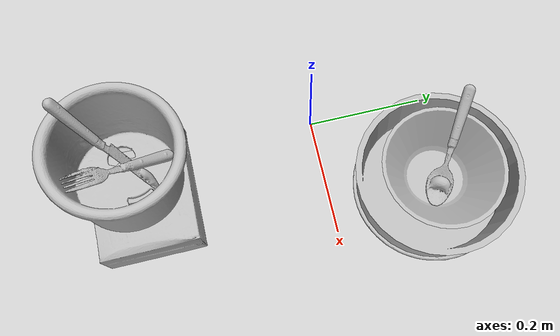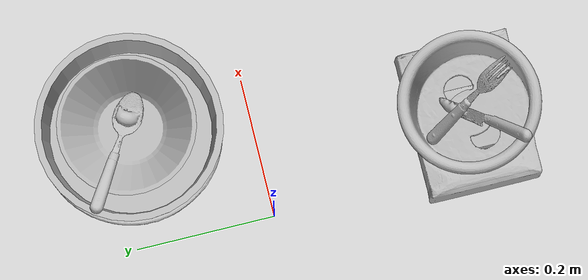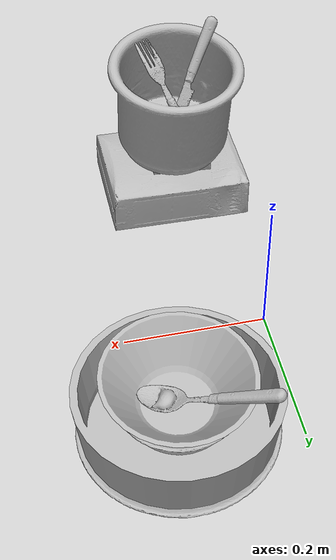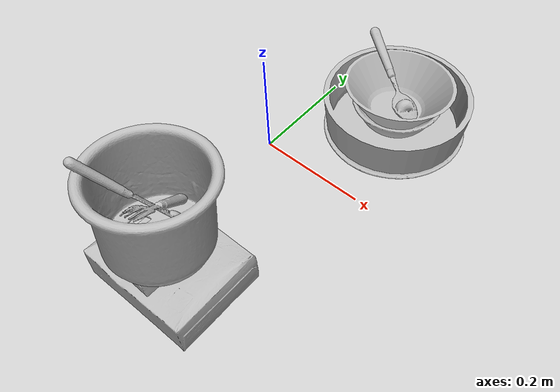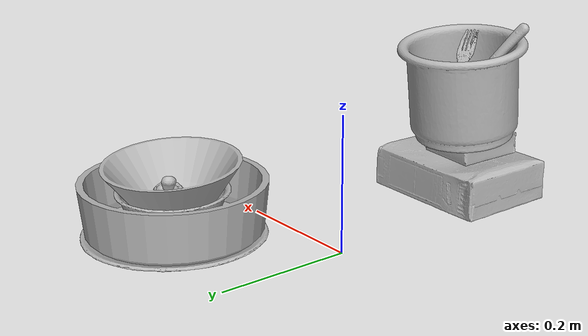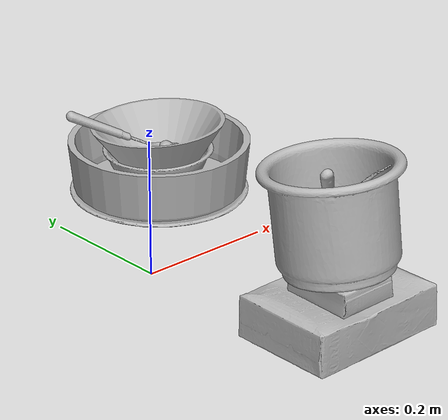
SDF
<?xml version="1.0" ?>
<sdf version="1.4">

  <world name="default">

    <light name="light1" type="point">

      <pose>0 0 1 0 0 0</pose>

      <diffuse>3 3 3 1</diffuse>

      <specular>3 3 3 1</specular>

    </light>

    <light name="light2" type="point">

      <pose>0 0.5 2 0 0 0</pose>

      <diffuse>1 1 1 1</diffuse>

      <specular>1 1 1 1</specular>

    </light>

    <light name="light3" type="point">

      <pose>0 0.5 2 0 0 0</pose>

      <diffuse>3 3 3 1</diffuse>

      <specular>3 3 3 1</specular>

    </light>

    <scene>

      <ambient>0.7 0.7 0.7</ambient>

    </scene>

    <model name="plate1">

      <link name="link_plate1">

        <collision name="default">

          <geometry>

            <mesh>

              <uri>model://plate/collision_meshes/collision.obj</uri>

              <scale>1.0 1.0 1.0</scale>

            </mesh>

          </geometry>

          <surface>

            <friction>

              <ode>

                <mu>0.5</mu>

                <mu2>0.5</mu2>

              </ode>

            </friction>

          </surface>

        </collision>

        <visual name="default">

          <geometry>

            <mesh>

              <uri>model://plate/visual_meshes/visual.dae</uri>

              <scale>1.0 1.0 1.0</scale>

            </mesh>

          </geometry>

        </visual>

        <inertial>

          <mass>0.2518167495727539</mass>

          <pose>-0.000604460306931287 0.0002782583760563284 -0.001056198962032795 0.0022187362427659595 -0.003225514577586686 0.4526257716004426</pose>

          <inertia>

            <ixx>0.0011780038</ixx>

            <iyy>0.001166737</iyy>

            <izz>0.0023039998</izz>

            <ixy>0</ixy>

            <ixz>0</ixz>

            <iyz>0</iyz>

          </inertia>

        </inertial>

      </link>

      <pose>0.15996208786964417 0.1699904501438141 0.013736936263740063 -1.6191033516227325e-05 -5.102615691908712e-05 -0.00024221712065380284</pose>

    </model>

    <model name="plate2">

      <link name="link_plate2">

        <collision name="default">

          <geometry>

            <mesh>

              <uri>model://pan_tefal/collision_meshes/collision.obj</uri>

              <scale>1.0 1.0 1.0</scale>

            </mesh>

          </geometry>

          <surface>

            <friction>

              <ode>

                <mu>0.5</mu>

                <mu2>0.5</mu2>

              </ode>

            </friction>

          </surface>

        </collision>

        <visual name="default">

          <geometry>

            <mesh>

              <uri>model://pan_tefal/visual_meshes/visual.dae</uri>

              <scale>1.0 1.0 1.0</scale>

            </mesh>

          </geometry>

        </visual>

        <inertial>

          <mass>1.062379002571106</mass>

          <pose>-0.00018001841090153903 3.2791107514640316e-05 -0.008514937944710255 0.0008190335190592257 -0.00033013878845789875 -0.3318630487039029</pose>

          <inertia>

            <ixx>0.0073335525</ixx>

            <iyy>0.007380832</iyy>

            <izz>0.013499655</izz>

            <ixy>0</ixy>

            <ixz>0</ixz>

            <iyz>0</iyz>

          </inertia>

        </inertial>

      </link>

      <pose>0.16016913950443268 0.16920727491378784 0.06393321603536606 -0.0004554828233171772 -0.0030048096549536744 0.005372120057954423</pose>

    </model>

    <model name="bowl1">

      <link name="link_bowl1">

        <collision name="default">

          <geometry>

            <mesh>

              <uri>model://bowl/collision_meshes/collision.obj</uri>

              <scale>1.0 1.0 1.0</scale>

            </mesh>

          </geometry>

          <surface>

            <friction>

              <ode>

                <mu>0.5</mu>

                <mu2>0.5</mu2>

              </ode>

            </friction>

          </surface>

        </collision>

        <visual name="default">

          <geometry>

            <mesh>

              <uri>model://bowl/visual_meshes/visual.dae</uri>

              <scale>1.0 1.0 1.0</scale>

            </mesh>

          </geometry>

        </visual>

        <inertial>

          <mass>0.06917417049407959</mass>

          <pose>0.00020445069822017103 -0.0010302119189873338 -0.0008042645640671253 -0.015764106225313407 0.014546789960746879 0.7140402093907182</pose>

          <inertia>

            <ixx>0.00015889853</ixx>

            <iyy>0.00015534814</iyy>

            <izz>0.000267322</izz>

            <ixy>0</ixy>

            <ixz>0</ixz>

            <iyz>0</iyz>

          </inertia>

        </inertial>

      </link>

      <pose>0.15957479178905487 0.1708521693944931 0.0613720528781414 -0.0020763747684631015 -0.0038815467257788706 -0.012710955016002234</pose>

    </model>

    <model name="bowl2">

      <link name="link_bowl2">

        <collision name="default">

          <geometry>

            <mesh>

              <uri>model://bowl_a/collision_meshes/collision.obj</uri>

              <scale>1.0 1.0 1.0</scale>

            </mesh>

          </geometry>

          <surface>

            <friction>

              <ode>

                <mu>0.5</mu>

                <mu2>0.5</mu2>

              </ode>

            </friction>

          </surface>

        </collision>

        <visual name="default">

          <geometry>

            <mesh>

              <uri>model://bowl_a/visual_meshes/visual.dae</uri>

              <scale>1.0 1.0 1.0</scale>

            </mesh>

          </geometry>

        </visual>

        <inertial>

          <mass>0.33581992983818054</mass>

          <pose>0.00027867587050423026 4.7312365495599806e-05 -0.0013765293406322598 -0.0009805275277335347 -0.0010938264345752996 -0.19124334191203107</pose>

          <inertia>

            <ixx>0.00095609494</ixx>

            <iyy>0.0009619646</iyy>

            <izz>0.0017004515</izz>

            <ixy>0</ixy>

            <ixz>0</ixz>

            <iyz>0</iyz>

          </inertia>

        </inertial>

      </link>

      <pose>0.16063310205936432 0.16960746049880981 0.09647785872220993 -0.0702966843495445 -0.019019882372401417 0.03807264308539788</pose>

    </model>

    <model name="silverware1">

      <link name="link_silverware1">

        <collision name="default">

          <geometry>

            <mesh>

              <uri>model://spoon/collision_meshes/collision.obj</uri>

              <scale>1.0 1.0 1.0</scale>

            </mesh>

          </geometry>

          <surface>

            <friction>

              <ode>

                <mu>0.5</mu>

                <mu2>0.5</mu2>

              </ode>

            </friction>

          </surface>

        </collision>

        <visual name="default">

          <geometry>

            <mesh>

              <uri>model://spoon/visual_meshes/visual.dae</uri>

              <scale>1.0 1.0 1.0</scale>

            </mesh>

          </geometry>

        </visual>

        <inertial>

          <mass>0.02635110728442669</mass>

          <pose>-0.005526317283511162 -0.0016034177970141172 -0.0007271651993505657 0.03521639754710896 -0.03906583271405073 0.0061506130160543454</pose>

          <inertia>

            <ixx>1.4656912e-06</ixx>

            <iyy>0.0001002651</iyy>

            <izz>0.00010098792</izz>

            <ixy>0</ixy>

            <ixz>0</ixz>

            <iyz>0</iyz>

          </inertia>

        </inertial>

      </link>

      <pose>0.1282419115304947 0.1983431875705719 0.10795997083187103 0.0071585660652956455 0.4377959914846275 -0.5285774435429693</pose>

    </model>

    <model name="box1">

      <link name="link_box1">

        <collision name="default">

          <geometry>

            <mesh>

              <uri>model://cracker_box/collision_meshes/collision.obj</uri>

              <scale>1.0 1.0 1.0</scale>

            </mesh>

          </geometry>

          <surface>

            <friction>

              <ode>

                <mu>0.5</mu>

                <mu2>0.5</mu2>

              </ode>

            </friction>

          </surface>

        </collision>

        <visual name="default">

          <geometry>

            <mesh>

              <uri>model://cracker_box/visual_meshes/visual.dae</uri>

              <scale>1.0 1.0 1.0</scale>

            </mesh>

          </geometry>

        </visual>

        <inertial>

          <mass>1.9942995309829712</mass>

          <pose>0.0009464178583584726 0.00025434247800149024 -0.0017029533628374338 -0.00031620747948387436 -0.011106490532043566 0.0025467943028284904</pose>

          <inertia>

            <ixx>0.005072607</ixx>

            <iyy>0.008375872</iyy>

            <izz>0.011953138</izz>

            <ixy>0</ixy>

            <ixz>0</ixz>

            <iyz>0</iyz>

          </inertia>

        </inertial>

      </link>

      <pose>0.06982684880495071 -0.29941344261169434 0.03648177906870842 -0.011788317905128293 -0.007363751157350543 0.0010266343977122327</pose>

    </model>

    <model name="box2">

      <link name="link_box2">

        <collision name="default">

          <geometry>

            <mesh>

              <uri>model://pudding_box/collision_meshes/collision.obj</uri>

              <scale>1.0 1.0 1.0</scale>

            </mesh>

          </geometry>

          <surface>

            <friction>

              <ode>

                <mu>0.5</mu>

                <mu2>0.5</mu2>

              </ode>

            </friction>

          </surface>

        </collision>

        <visual name="default">

          <geometry>

            <mesh>

              <uri>model://pudding_box/visual_meshes/visual.dae</uri>

              <scale>1.0 1.0 1.0</scale>

            </mesh>

          </geometry>

        </visual>

        <inertial>

          <mass>0.5201411247253418</mass>

          <pose>0.0004894821904599667 0.0008067885646596551 -0.0005188828217796981 0.00521310178321913 -0.006603799649863257 0.020079825157321304</pose>

          <inertia>

            <ixx>0.0005879929</ixx>

            <iyy>0.00039560578</iyy>

            <izz>0.00086832506</izz>

            <ixy>0</ixy>

            <ixz>0</ixz>

            <iyz>0</iyz>

          </inertia>

        </inertial>

      </link>

      <pose>0.0587916262447834 -0.3126232326030731 0.0853496640920639 3.1278612095795353 -0.05833850262206267 -0.014796757787324016</pose>

    </model>

    <model name="cup1">

      <link name="link_cup1">

        <collision name="default">

          <geometry>

            <mesh>

              <uri>model://i_cups/collision_meshes/collision.obj</uri>

              <scale>2.0 2.0 2.0</scale>

            </mesh>

          </geometry>

          <surface>

            <friction>

              <ode>

                <mu>0.5</mu>

                <mu2>0.5</mu2>

              </ode>

            </friction>

          </surface>

        </collision>

        <visual name="default">

          <geometry>

            <mesh>

              <uri>model://i_cups/visual_meshes/visual.dae</uri>

              <scale>2.0 2.0 2.0</scale>

            </mesh>

          </geometry>

        </visual>

        <inertial>

          <mass>0.946932315826416</mass>

          <pose>0.00022480011102743447 0.0003359477559570223 -0.0017158038681373 -0.02898277199923076 -0.03987335280003036 -0.34591530516328983</pose>

          <inertia>

            <ixx>0.005244167</ixx>

            <iyy>0.0052903723</iyy>

            <izz>0.005861205</izz>

            <ixy>0</ixy>

            <ixz>0</ixz>

            <iyz>0</iyz>

          </inertia>

        </inertial>

      </link>

      <pose>0.06513477861881256 -0.2958366572856903 0.1720554083585739 -0.11417722951303572 -0.028232380570030895 -0.030108024666897985</pose>

    </model>

    <model name="silverware2">

      <link name="link_silverware2">

        <collision name="default">

          <geometry>

            <mesh>

              <uri>model://fork/collision_meshes/collision.obj</uri>

              <scale>1.0 1.0 1.0</scale>

            </mesh>

          </geometry>

          <surface>

            <friction>

              <ode>

                <mu>0.5</mu>

                <mu2>0.5</mu2>

              </ode>

            </friction>

          </surface>

        </collision>

        <visual name="default">

          <geometry>

            <mesh>

              <uri>model://fork/visual_meshes/visual.dae</uri>

              <scale>1.0 1.0 1.0</scale>

            </mesh>

          </geometry>

        </visual>

        <inertial>

          <mass>0.03207480534911156</mass>

          <pose>-0.02957005240023136 0.00046588238910771906 0.0003218861820641905 -0.013551414501779666 -0.010977842682601763 0.014453906756127453</pose>

          <inertia>

            <ixx>1.1244033e-06</ixx>

            <iyy>8.373807e-05</iyy>

            <izz>8.424099e-05</izz>

            <ixy>0</ixy>

            <ixz>0</ixz>

            <iyz>0</iyz>

          </inertia>

        </inertial>

      </link>

      <pose>0.07093637436628342 -0.29000145196914673 0.18191391229629517 2.9871673896667676 -0.8421320903255004 -1.0647695474387442</pose>

    </model>

    <model name="silverware3">

      <link name="link_silverware3">

        <collision name="default">

          <geometry>

            <mesh>

              <uri>model://knife/collision_meshes/collision.obj</uri>

              <scale>1.0 1.0 1.0</scale>

            </mesh>

          </geometry>

          <surface>

            <friction>

              <ode>

                <mu>0.5</mu>

                <mu2>0.5</mu2>

              </ode>

            </friction>

          </surface>

        </collision>

        <visual name="default">

          <geometry>

            <mesh>

              <uri>model://knife/visual_meshes/visual.dae</uri>

              <scale>1.0 1.0 1.0</scale>

            </mesh>

          </geometry>

        </visual>

        <inertial>

          <mass>0.02260335348546505</mass>

          <pose>-0.023785259574651718 0.0015275129117071629 5.062025593360886e-05 0.073049853839256 0.017248417767033373 -0.0074098225522862896</pose>

          <inertia>

            <ixx>6.41575e-07</ixx>

            <iyy>8.6838445e-05</iyy>

            <izz>8.704508e-05</izz>

            <ixy>0</ixy>

            <ixz>0</ixz>

            <iyz>0</iyz>

          </inertia>

        </inertial>

      </link>

      <pose>0.0410529188811779 -0.30498695373535156 0.19309724867343903 2.476904339393697 0.8959279096506988 0.7629491367529685</pose>

    </model>

  </world>

</sdf>
